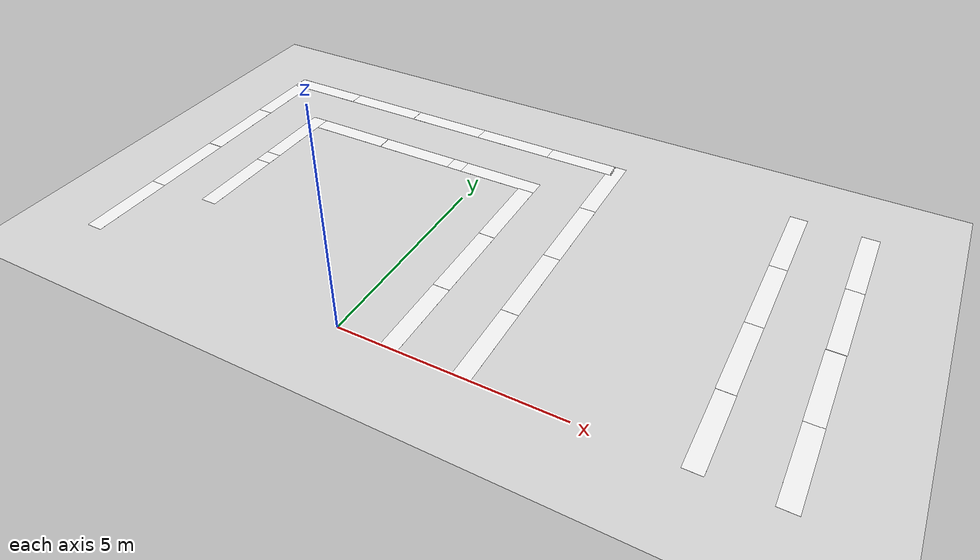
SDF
<sdf version="1.6">
 <world name="default">
  <model name="ground_plane">
   <static>1</static>
   <link name="link">
    <collision name="collision">
     <geometry><plane><normal>0 0 1</normal><size>100 100</size></plane></geometry>
     <surface>
      <contact><collide_bitmask>65535</collide_bitmask></contact>
      <friction><ode><mu>100</mu><mu2>50</mu2></ode></friction>
     </surface>
    </collision>
    <visual name="visual">
     <cast_shadows>0</cast_shadows>
     <geometry><plane><normal>0 0 1</normal><size>100 100</size></plane></geometry>
     <material>
      <script><uri>file://media/materials/scripts/gazebo.material</uri><name>Gazebo/Grey</name></script>
     </material>
    </visual>
   </link>
  </model>
  <model name="white line">
   <static>1</static>
   <link name="link_ground">
    <collision name="collision">
     <geometry><plane><normal>0 0 1</normal><size>0.4 2</size></plane></geometry>
     <surface><friction><ode><mu>100</mu><mu2>50</mu2></ode></friction></surface>
    </collision>
    <visual name="visual_ground">
     <cast_shadows>0</cast_shadows>
     <geometry><plane><normal>0 0 1</normal><size>0.4 2</size></plane></geometry>
     <material>
      <script><uri>file://media/materials/scripts/gazebo.material</uri><name>Gazebo/White</name></script>
     </material>
    </visual>
   </link>
   <pose>8.79819 7.00078 0 0 -0 0</pose>
  </model>
  <model name="white line_0">
   <static>1</static>
   <link name="link_ground">
    <collision name="collision">
     <geometry><plane><normal>0 0 1</normal><size>0.4 2</size></plane></geometry>
     <surface><friction><ode><mu>100</mu><mu2>50</mu2></ode></friction></surface>
    </collision>
    <visual name="visual_ground">
     <cast_shadows>0</cast_shadows>
     <geometry><plane><normal>0 0 1</normal><size>0.4 2</size></plane></geometry>
     <material>
      <script><uri>file://media/materials/scripts/gazebo.material</uri><name>Gazebo/White</name></script>
     </material>
    </visual>
   </link>
   <pose>7.21561 7.00606 0 0 -0 0</pose>
  </model>
  <model name="white line_1">
   <static>1</static>
   <link name="link_ground">
    <collision name="collision">
     <geometry><plane><normal>0 0 1</normal><size>0.4 2</size></plane></geometry>
     <surface><friction><ode><mu>100</mu><mu2>50</mu2></ode></friction></surface>
    </collision>
    <visual name="visual_ground">
     <cast_shadows>0</cast_shadows>
     <geometry><plane><normal>0 0 1</normal><size>0.4 2</size></plane></geometry>
     <material>
      <script><uri>file://media/materials/scripts/gazebo.material</uri><name>Gazebo/White</name></script>
     </material>
    </visual>
   </link>
   <pose>8.79819 5.00675 0 0 -0 0</pose>
  </model>
  <model name="white line_2">
   <static>1</static>
   <link name="link_ground">
    <collision name="collision">
     <geometry><plane><normal>0 0 1</normal><size>0.4 2</size></plane></geometry>
     <surface><friction><ode><mu>100</mu><mu2>50</mu2></ode></friction></surface>
    </collision>
    <visual name="visual_ground">
     <cast_shadows>0</cast_shadows>
     <geometry><plane><normal>0 0 1</normal><size>0.4 2</size></plane></geometry>
     <material>
      <script><uri>file://media/materials/scripts/gazebo.material</uri><name>Gazebo/White</name></script>
     </material>
    </visual>
   </link>
   <pose>7.21561 5.00675 0 0 -0 0</pose>
  </model>
  <model name="white line_3">
   <static>1</static>
   <link name="link_ground">
    <collision name="collision">
     <geometry><plane><normal>0 0 1</normal><size>0.4 2</size></plane></geometry>
     <surface><friction><ode><mu>100</mu><mu2>50</mu2></ode></friction></surface>
    </collision>
    <visual name="visual_ground">
     <cast_shadows>0</cast_shadows>
     <geometry><plane><normal>0 0 1</normal><size>0.4 2</size></plane></geometry>
     <material>
      <script><uri>file://media/materials/scripts/gazebo.material</uri><name>Gazebo/White</name></script>
     </material>
    </visual>
   </link>
   <pose>8.78694 2.99686 0 0 -0 0</pose>
  </model>
  <model name="white line_4">
   <static>1</static>
   <link name="link_ground">
    <collision name="collision">
     <geometry><plane><normal>0 0 1</normal><size>0.4 2</size></plane></geometry>
     <surface><friction><ode><mu>100</mu><mu2>50</mu2></ode></friction></surface>
    </collision>
    <visual name="visual_ground">
     <cast_shadows>0</cast_shadows>
     <geometry><plane><normal>0 0 1</normal><size>0.4 2</size></plane></geometry>
     <material>
      <script><uri>file://media/materials/scripts/gazebo.material</uri><name>Gazebo/White</name></script>
     </material>
    </visual>
   </link>
   <pose>7.21276 3.00848 0 0 -0 0</pose>
  </model>
  <model name="white line_5">
   <static>1</static>
   <link name="link_ground">
    <collision name="collision">
     <geometry><plane><normal>0 0 1</normal><size>0.4 2</size></plane></geometry>
     <surface><friction><ode><mu>100</mu><mu2>50</mu2></ode></friction></surface>
    </collision>
    <visual name="visual_ground">
     <cast_shadows>0</cast_shadows>
     <geometry><plane><normal>0 0 1</normal><size>0.4 2</size></plane></geometry>
     <material>
      <script><uri>file://media/materials/scripts/gazebo.material</uri><name>Gazebo/White</name></script>
     </material>
    </visual>
   </link>
   <pose>8.79055 1.00562 0 0 -0 0</pose>
  </model>
  <model name="white line_6">
   <static>1</static>
   <link name="link_ground">
    <collision name="collision">
     <geometry><plane><normal>0 0 1</normal><size>0.4 2</size></plane></geometry>
     <surface><friction><ode><mu>100</mu><mu2>50</mu2></ode></friction></surface>
    </collision>
    <visual name="visual_ground">
     <cast_shadows>0</cast_shadows>
     <geometry><plane><normal>0 0 1</normal><size>0.4 2</size></plane></geometry>
     <material>
      <script><uri>file://media/materials/scripts/gazebo.material</uri><name>Gazebo/White</name></script>
     </material>
    </visual>
   </link>
   <pose>7.22094 1.00562 0 0 -0 0</pose>
  </model>
  <model name="white line_29">
   <static>1</static>
   <link name="link_ground">
    <collision name="collision">
     <geometry><plane><normal>0 0 1</normal><size>0.4 2</size></plane></geometry>
     <surface><friction><ode><mu>100</mu><mu2>50</mu2></ode></friction></surface>
    </collision>
    <visual name="visual_ground">
     <cast_shadows>0</cast_shadows>
     <geometry><plane><normal>0 0 1</normal><size>0.4 2</size></plane></geometry>
     <material>
      <script><uri>file://media/materials/scripts/gazebo.material</uri><name>Gazebo/White</name></script>
     </material>
    </visual>
   </link>
   <pose>2.79787 1.00431 0 0 -0 0</pose>
  </model>
  <model name="white line_30">
   <static>1</static>
   <link name="link_ground">
    <collision name="collision">
     <geometry><plane><normal>0 0 1</normal><size>0.4 2</size></plane></geometry>
     <surface><friction><ode><mu>100</mu><mu2>50</mu2></ode></friction></surface>
    </collision>
    <visual name="visual_ground">
     <cast_shadows>0</cast_shadows>
     <geometry><plane><normal>0 0 1</normal><size>0.4 2</size></plane></geometry>
     <material>
      <script><uri>file://media/materials/scripts/gazebo.material</uri><name>Gazebo/White</name></script>
     </material>
    </visual>
   </link>
   <pose>1.19303 1.00431 0 0 -0 0</pose>
  </model>
  <model name="white line_31">
   <static>1</static>
   <link name="link_ground">
    <collision name="collision">
     <geometry><plane><normal>0 0 1</normal><size>0.4 2</size></plane></geometry>
     <surface><friction><ode><mu>100</mu><mu2>50</mu2></ode></friction></surface>
    </collision>
    <visual name="visual_ground">
     <cast_shadows>0</cast_shadows>
     <geometry><plane><normal>0 0 1</normal><size>0.4 2</size></plane></geometry>
     <material>
      <script><uri>file://media/materials/scripts/gazebo.material</uri><name>Gazebo/White</name></script>
     </material>
    </visual>
   </link>
   <pose>2.79787 3.00655 0 0 -0 0</pose>
  </model>
  <model name="white line_32">
   <static>1</static>
   <link name="link_ground">
    <collision name="collision">
     <geometry><plane><normal>0 0 1</normal><size>0.4 2</size></plane></geometry>
     <surface><friction><ode><mu>100</mu><mu2>50</mu2></ode></friction></surface>
    </collision>
    <visual name="visual_ground">
     <cast_shadows>0</cast_shadows>
     <geometry><plane><normal>0 0 1</normal><size>0.4 2</size></plane></geometry>
     <material>
      <script><uri>file://media/materials/scripts/gazebo.material</uri><name>Gazebo/White</name></script>
     </material>
    </visual>
   </link>
   <pose>1.19303 3.00655 0 0 -0 0</pose>
  </model>
  <model name="white line_33">
   <static>1</static>
   <link name="link_ground">
    <collision name="collision">
     <geometry><plane><normal>0 0 1</normal><size>0.4 2</size></plane></geometry>
     <surface><friction><ode><mu>100</mu><mu2>50</mu2></ode></friction></surface>
    </collision>
    <visual name="visual_ground">
     <cast_shadows>0</cast_shadows>
     <geometry><plane><normal>0 0 1</normal><size>0.4 2</size></plane></geometry>
     <material>
      <script><uri>file://media/materials/scripts/gazebo.material</uri><name>Gazebo/White</name></script>
     </material>
    </visual>
   </link>
   <pose>2.80224 5.0036 0 0 -0 0</pose>
  </model>
  <model name="white line_34">
   <static>1</static>
   <link name="link_ground">
    <collision name="collision">
     <geometry><plane><normal>0 0 1</normal><size>0.4 2</size></plane></geometry>
     <surface><friction><ode><mu>100</mu><mu2>50</mu2></ode></friction></surface>
    </collision>
    <visual name="visual_ground">
     <cast_shadows>0</cast_shadows>
     <geometry><plane><normal>0 0 1</normal><size>0.4 2</size></plane></geometry>
     <material>
      <script><uri>file://media/materials/scripts/gazebo.material</uri><name>Gazebo/White</name></script>
     </material>
    </visual>
   </link>
   <pose>1.18928 5.01286 0 0 -0 0</pose>
  </model>
  <model name="white line_35">
   <static>1</static>
   <link name="link_ground">
    <collision name="collision">
     <geometry><plane><normal>0 0 1</normal><size>0.4 2</size></plane></geometry>
     <surface><friction><ode><mu>100</mu><mu2>50</mu2></ode></friction></surface>
    </collision>
    <visual name="visual_ground">
     <cast_shadows>0</cast_shadows>
     <geometry><plane><normal>0 0 1</normal><size>0.4 2</size></plane></geometry>
     <material>
      <script><uri>file://media/materials/scripts/gazebo.material</uri><name>Gazebo/White</name></script>
     </material>
    </visual>
   </link>
   <pose>2.79742 7.0011 0 0 -0 0</pose>
  </model>
  <model name="white line_36">
   <static>1</static>
   <link name="link_ground">
    <collision name="collision">
     <geometry><plane><normal>0 0 1</normal><size>2 0.4</size></plane></geometry>
     <surface><friction><ode><mu>100</mu><mu2>50</mu2></ode></friction></surface>
    </collision>
    <visual name="visual_ground">
     <cast_shadows>0</cast_shadows>
     <geometry><plane><normal>0 0 1</normal><size>2 0.4</size></plane></geometry>
     <material>
      <script><uri>file://media/materials/scripts/gazebo.material</uri><name>Gazebo/White</name></script>
     </material>
    </visual>
   </link>
   <pose>1.98758 7.80318 0 0 -0 0</pose>
  </model>
  <model name="white line_37">
   <static>1</static>
   <link name="link_ground">
    <collision name="collision">
     <geometry><plane><normal>0 0 1</normal><size>2 0.4</size></plane></geometry>
     <surface><friction><ode><mu>100</mu><mu2>50</mu2></ode></friction></surface>
    </collision>
    <visual name="visual_ground">
     <cast_shadows>0</cast_shadows>
     <geometry><plane><normal>0 0 1</normal><size>2 0.4</size></plane></geometry>
     <material>
      <script><uri>file://media/materials/scripts/gazebo.material</uri><name>Gazebo/White</name></script>
     </material>
    </visual>
   </link>
   <pose>0.390717 6.1989 0 0 -0 0</pose>
  </model>
  <model name="white line_38">
   <static>1</static>
   <link name="link_ground">
    <collision name="collision">
     <geometry><plane><normal>0 0 1</normal><size>2 0.4</size></plane></geometry>
     <surface><friction><ode><mu>100</mu><mu2>50</mu2></ode></friction></surface>
    </collision>
    <visual name="visual_ground">
     <cast_shadows>0</cast_shadows>
     <geometry><plane><normal>0 0 1</normal><size>2 0.4</size></plane></geometry>
     <material>
      <script><uri>file://media/materials/scripts/gazebo.material</uri><name>Gazebo/White</name></script>
     </material>
    </visual>
   </link>
   <pose>0.001404 7.80197 0 0 -0 0</pose>
  </model>
  <model name="white line_39">
   <static>1</static>
   <link name="link_ground">
    <collision name="collision">
     <geometry><plane><normal>0 0 1</normal><size>0.4 0.4</size></plane></geometry>
     <surface><friction><ode><mu>100</mu><mu2>50</mu2></ode></friction></surface>
    </collision>
    <visual name="visual_ground">
     <cast_shadows>0</cast_shadows>
     <geometry><plane><normal>0 0 1</normal><size>0.4 0.4</size></plane></geometry>
     <material>
      <script><uri>file://media/materials/scripts/gazebo.material</uri><name>Gazebo/White</name></script>
     </material>
    </visual>
   </link>
   <pose>-0.807768 6.1989 0 0 -0 0</pose>
  </model>
  <model name="white line_40">
   <static>1</static>
   <link name="link_ground">
    <collision name="collision">
     <geometry><plane><normal>0 0 1</normal><size>2 0.4</size></plane></geometry>
     <surface><friction><ode><mu>100</mu><mu2>50</mu2></ode></friction></surface>
    </collision>
    <visual name="visual_ground">
     <cast_shadows>0</cast_shadows>
     <geometry><plane><normal>0 0 1</normal><size>2 0.4</size></plane></geometry>
     <material>
      <script><uri>file://media/materials/scripts/gazebo.material</uri><name>Gazebo/White</name></script>
     </material>
    </visual>
   </link>
   <pose>-1.99216 7.8021 0 0 -0 0</pose>
  </model>
  <model name="white line_41">
   <static>1</static>
   <link name="link_ground">
    <collision name="collision">
     <geometry><plane><normal>0 0 1</normal><size>2 0.4</size></plane></geometry>
     <surface><friction><ode><mu>100</mu><mu2>50</mu2></ode></friction></surface>
    </collision>
    <visual name="visual_ground">
     <cast_shadows>0</cast_shadows>
     <geometry><plane><normal>0 0 1</normal><size>2 0.4</size></plane></geometry>
     <material>
      <script><uri>file://media/materials/scripts/gazebo.material</uri><name>Gazebo/White</name></script>
     </material>
    </visual>
   </link>
   <pose>-1.99855 6.19776 0 0 -0 0</pose>
  </model>
  <model name="white line_42">
   <static>1</static>
   <link name="link_ground">
    <collision name="collision">
     <geometry><plane><normal>0 0 1</normal><size>2 0.4</size></plane></geometry>
     <surface><friction><ode><mu>100</mu><mu2>50</mu2></ode></friction></surface>
    </collision>
    <visual name="visual_ground">
     <cast_shadows>0</cast_shadows>
     <geometry><plane><normal>0 0 1</normal><size>2 0.4</size></plane></geometry>
     <material>
      <script><uri>file://media/materials/scripts/gazebo.material</uri><name>Gazebo/White</name></script>
     </material>
    </visual>
   </link>
   <pose>-3.99754 7.8021 0 0 -0 0</pose>
  </model>
  <model name="white line_43">
   <static>1</static>
   <link name="link_ground">
    <collision name="collision">
     <geometry><plane><normal>0 0 1</normal><size>2 0.4</size></plane></geometry>
     <surface><friction><ode><mu>100</mu><mu2>50</mu2></ode></friction></surface>
    </collision>
    <visual name="visual_ground">
     <cast_shadows>0</cast_shadows>
     <geometry><plane><normal>0 0 1</normal><size>2 0.4</size></plane></geometry>
     <material>
      <script><uri>file://media/materials/scripts/gazebo.material</uri><name>Gazebo/White</name></script>
     </material>
    </visual>
   </link>
   <pose>-4.0103 6.19776 0 0 -0 0</pose>
  </model>
  <model name="white line_44">
   <static>1</static>
   <link name="link_ground">
    <collision name="collision">
     <geometry><plane><normal>0 0 1</normal><size>2 0.4</size></plane></geometry>
     <surface><friction><ode><mu>100</mu><mu2>50</mu2></ode></friction></surface>
    </collision>
    <visual name="visual_ground">
     <cast_shadows>0</cast_shadows>
     <geometry><plane><normal>0 0 1</normal><size>2 0.4</size></plane></geometry>
     <material>
      <script><uri>file://media/materials/scripts/gazebo.material</uri><name>Gazebo/White</name></script>
     </material>
    </visual>
   </link>
   <pose>-5.99833 7.79851 0 0 -0 0</pose>
  </model>
  <model name="white line_45">
   <static>1</static>
   <link name="link_ground">
    <collision name="collision">
     <geometry><plane><normal>0 0 1</normal><size>0.4 2</size></plane></geometry>
     <surface><friction><ode><mu>100</mu><mu2>50</mu2></ode></friction></surface>
    </collision>
    <visual name="visual_ground">
     <cast_shadows>0</cast_shadows>
     <geometry><plane><normal>0 0 1</normal><size>0.4 2</size></plane></geometry>
     <material>
      <script><uri>file://media/materials/scripts/gazebo.material</uri><name>Gazebo/White</name></script>
     </material>
    </visual>
   </link>
   <pose>-6.80791 7.00153 0 0 -0 0</pose>
  </model>
  <model name="white line_46">
   <static>1</static>
   <link name="link_ground">
    <collision name="collision">
     <geometry><plane><normal>0 0 1</normal><size>0.4 2</size></plane></geometry>
     <surface><friction><ode><mu>100</mu><mu2>50</mu2></ode></friction></surface>
    </collision>
    <visual name="visual_ground">
     <cast_shadows>0</cast_shadows>
     <geometry><plane><normal>0 0 1</normal><size>0.4 2</size></plane></geometry>
     <material>
      <script><uri>file://media/materials/scripts/gazebo.material</uri><name>Gazebo/White</name></script>
     </material>
    </visual>
   </link>
   <pose>-5.20779 5.39493 0 0 -0 0</pose>
  </model>
  <model name="white line_47">
   <static>1</static>
   <link name="link_ground">
    <collision name="collision">
     <geometry><plane><normal>0 0 1</normal><size>0.4 0.4</size></plane></geometry>
     <surface><friction><ode><mu>100</mu><mu2>50</mu2></ode></friction></surface>
    </collision>
    <visual name="visual_ground">
     <cast_shadows>0</cast_shadows>
     <geometry><plane><normal>0 0 1</normal><size>0.4 0.4</size></plane></geometry>
     <material>
      <script><uri>file://media/materials/scripts/gazebo.material</uri><name>Gazebo/White</name></script>
     </material>
    </visual>
   </link>
   <pose>-5.20779 4.20159 0 0 -0 0</pose>
  </model>
  <model name="white line_48">
   <static>1</static>
   <link name="link_ground">
    <collision name="collision">
     <geometry><plane><normal>0 0 1</normal><size>0.4 2</size></plane></geometry>
     <surface><friction><ode><mu>100</mu><mu2>50</mu2></ode></friction></surface>
    </collision>
    <visual name="visual_ground">
     <cast_shadows>0</cast_shadows>
     <geometry><plane><normal>0 0 1</normal><size>0.4 2</size></plane></geometry>
     <material>
      <script><uri>file://media/materials/scripts/gazebo.material</uri><name>Gazebo/White</name></script>
     </material>
    </visual>
   </link>
   <pose>-6.80563 5.00392 0 0 -0 0</pose>
  </model>
  <model name="white line_49">
   <static>1</static>
   <link name="link_ground">
    <collision name="collision">
     <geometry><plane><normal>0 0 1</normal><size>0.4 2</size></plane></geometry>
     <surface><friction><ode><mu>100</mu><mu2>50</mu2></ode></friction></surface>
    </collision>
    <visual name="visual_ground">
     <cast_shadows>0</cast_shadows>
     <geometry><plane><normal>0 0 1</normal><size>0.4 2</size></plane></geometry>
     <material>
      <script><uri>file://media/materials/scripts/gazebo.material</uri><name>Gazebo/White</name></script>
     </material>
    </visual>
   </link>
   <pose>-5.20762 3.00238 0 0 -0 0</pose>
  </model>
  <model name="white line_50">
   <static>1</static>
   <link name="link_ground">
    <collision name="collision">
     <geometry><plane><normal>0 0 1</normal><size>0.4 2</size></plane></geometry>
     <surface><friction><ode><mu>100</mu><mu2>50</mu2></ode></friction></surface>
    </collision>
    <visual name="visual_ground">
     <cast_shadows>0</cast_shadows>
     <geometry><plane><normal>0 0 1</normal><size>0.4 2</size></plane></geometry>
     <material>
      <script><uri>file://media/materials/scripts/gazebo.material</uri><name>Gazebo/White</name></script>
     </material>
    </visual>
   </link>
   <pose>-6.80539 3.00238 0 0 -0 0</pose>
  </model>
  <model name="white line_52">
   <static>1</static>
   <link name="link_ground">
    <collision name="collision">
     <geometry><plane><normal>0 0 1</normal><size>0.4 2</size></plane></geometry>
     <surface><friction><ode><mu>100</mu><mu2>50</mu2></ode></friction></surface>
    </collision>
    <visual name="visual_ground">
     <cast_shadows>0</cast_shadows>
     <geometry><plane><normal>0 0 1</normal><size>0.4 2</size></plane></geometry>
     <material>
      <script><uri>file://media/materials/scripts/gazebo.material</uri><name>Gazebo/White</name></script>
     </material>
    </visual>
   </link>
   <pose>-6.80257 1.00686 0 0 -0 0</pose>
  </model>
 </world>
</sdf>
